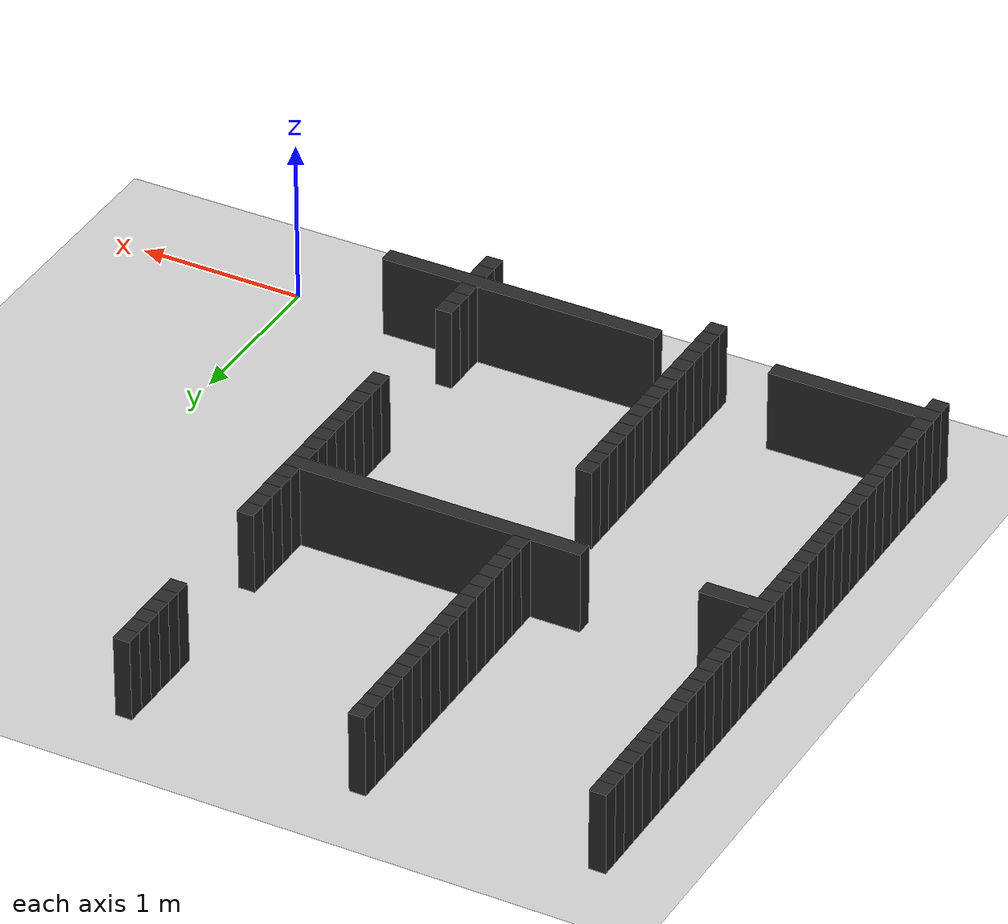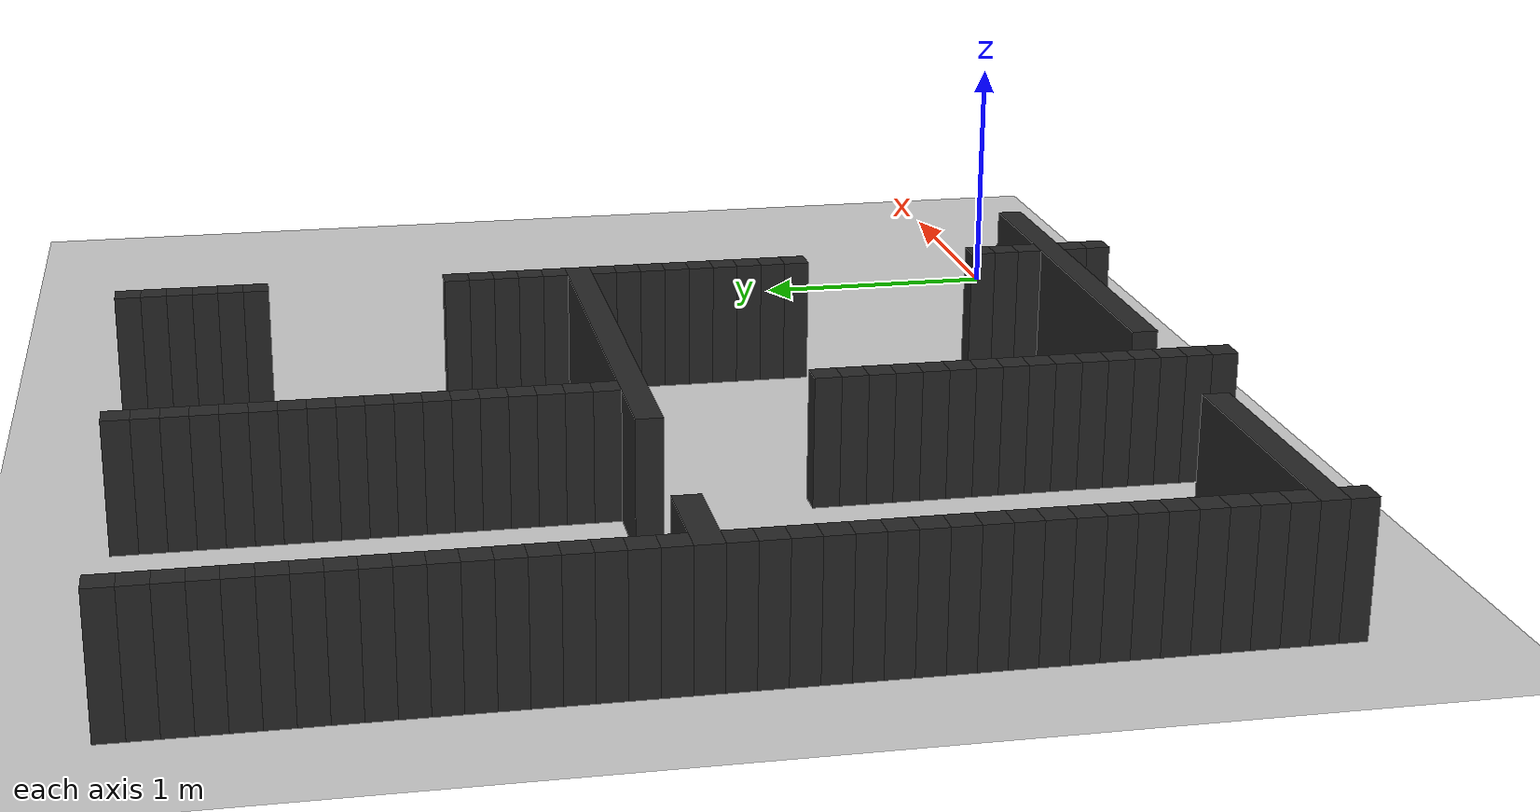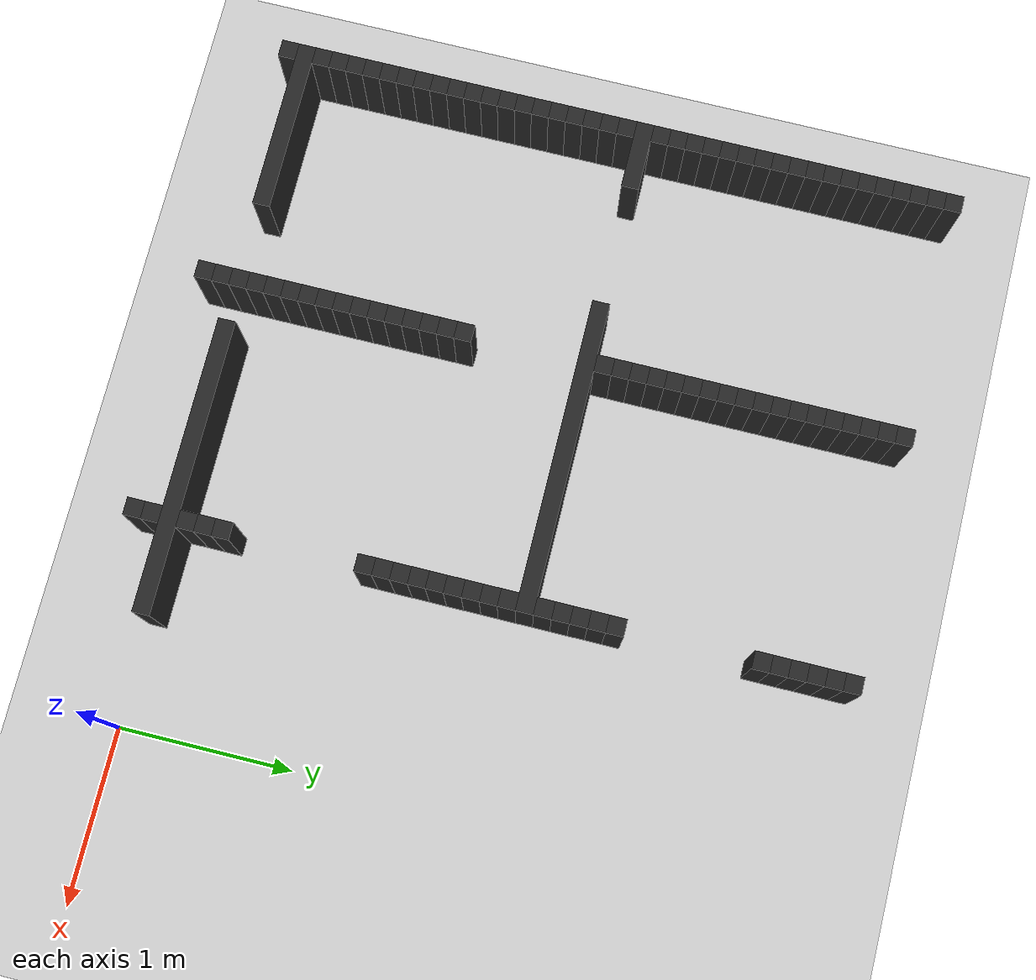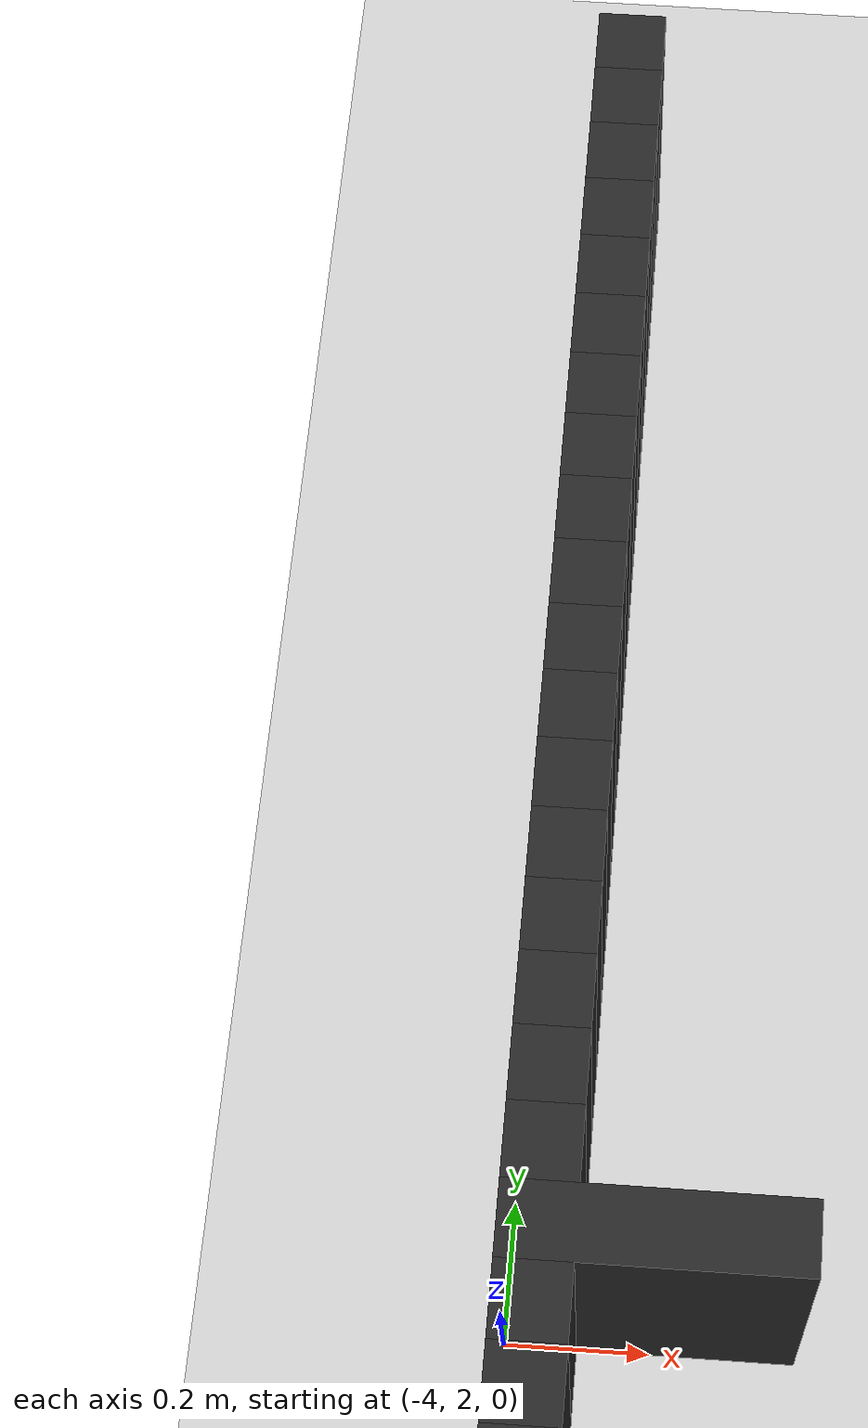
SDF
<sdf version="1.6">
 <world name="stress_maze_world">
  <include><uri>model://sun</uri></include>
  <include><uri>model://ground_plane</uri></include>
  <model name="wall_038_014">
   <static>true</static>
   <pose>-2.55000 -0.15000 0.25 0 0 0</pose>
   <link name="link">
    <collision name="collision"><geometry><box><size>0.10000 0.10000 0.5</size></box></geometry></collision>
    <visual name="visual">
     <geometry><box><size>0.10000 0.10000 0.5</size></box></geometry>
     <material><ambient>0.12 0.12 0.12 1</ambient><diffuse>0.15 0.15 0.15 1</diffuse></material>
    </visual>
   </link>
  </model>
  <model name="wall_038_028">
   <static>true</static>
   <pose>-1.15000 -0.15000 0.25 0 0 0</pose>
   <link name="link">
    <collision name="collision"><geometry><box><size>0.10000 0.10000 0.5</size></box></geometry></collision>
    <visual name="visual">
     <geometry><box><size>0.10000 0.10000 0.5</size></box></geometry>
     <material><ambient>0.12 0.12 0.12 1</ambient><diffuse>0.15 0.15 0.15 1</diffuse></material>
    </visual>
   </link>
  </model>
  <model name="wall_039_000">
   <static>true</static>
   <pose>-3.95000 -0.05000 0.25 0 0 0</pose>
   <link name="link">
    <collision name="collision"><geometry><box><size>0.10000 0.10000 0.5</size></box></geometry></collision>
    <visual name="visual">
     <geometry><box><size>0.10000 0.10000 0.5</size></box></geometry>
     <material><ambient>0.12 0.12 0.12 1</ambient><diffuse>0.15 0.15 0.15 1</diffuse></material>
    </visual>
   </link>
  </model>
  <model name="wall_039_014">
   <static>true</static>
   <pose>-2.55000 -0.05000 0.25 0 0 0</pose>
   <link name="link">
    <collision name="collision"><geometry><box><size>0.10000 0.10000 0.5</size></box></geometry></collision>
    <visual name="visual">
     <geometry><box><size>0.10000 0.10000 0.5</size></box></geometry>
     <material><ambient>0.12 0.12 0.12 1</ambient><diffuse>0.15 0.15 0.15 1</diffuse></material>
    </visual>
   </link>
  </model>
  <model name="wall_039_028">
   <static>true</static>
   <pose>-1.15000 -0.05000 0.25 0 0 0</pose>
   <link name="link">
    <collision name="collision"><geometry><box><size>0.10000 0.10000 0.5</size></box></geometry></collision>
    <visual name="visual">
     <geometry><box><size>0.10000 0.10000 0.5</size></box></geometry>
     <material><ambient>0.12 0.12 0.12 1</ambient><diffuse>0.15 0.15 0.15 1</diffuse></material>
    </visual>
   </link>
  </model>
  <model name="wall_040_000">
   <static>true</static>
   <pose>-3.50000 0.05000 0.25 0 0 0</pose>
   <link name="link">
    <collision name="collision"><geometry><box><size>1.00000 0.10000 0.5</size></box></geometry></collision>
    <visual name="visual">
     <geometry><box><size>1.00000 0.10000 0.5</size></box></geometry>
     <material><ambient>0.12 0.12 0.12 1</ambient><diffuse>0.15 0.15 0.15 1</diffuse></material>
    </visual>
   </link>
  </model>
  <model name="wall_040_014">
   <static>true</static>
   <pose>-2.55000 0.05000 0.25 0 0 0</pose>
   <link name="link">
    <collision name="collision"><geometry><box><size>0.10000 0.10000 0.5</size></box></geometry></collision>
    <visual name="visual">
     <geometry><box><size>0.10000 0.10000 0.5</size></box></geometry>
     <material><ambient>0.12 0.12 0.12 1</ambient><diffuse>0.15 0.15 0.15 1</diffuse></material>
    </visual>
   </link>
  </model>
  <model name="wall_040_017">
   <static>true</static>
   <pose>-1.45000 0.05000 0.25 0 0 0</pose>
   <link name="link">
    <collision name="collision"><geometry><box><size>1.70000 0.10000 0.5</size></box></geometry></collision>
    <visual name="visual">
     <geometry><box><size>1.70000 0.10000 0.5</size></box></geometry>
     <material><ambient>0.12 0.12 0.12 1</ambient><diffuse>0.15 0.15 0.15 1</diffuse></material>
    </visual>
   </link>
  </model>
  <model name="wall_041_000">
   <static>true</static>
   <pose>-3.95000 0.15000 0.25 0 0 0</pose>
   <link name="link">
    <collision name="collision"><geometry><box><size>0.10000 0.10000 0.5</size></box></geometry></collision>
    <visual name="visual">
     <geometry><box><size>0.10000 0.10000 0.5</size></box></geometry>
     <material><ambient>0.12 0.12 0.12 1</ambient><diffuse>0.15 0.15 0.15 1</diffuse></material>
    </visual>
   </link>
  </model>
  <model name="wall_041_014">
   <static>true</static>
   <pose>-2.55000 0.15000 0.25 0 0 0</pose>
   <link name="link">
    <collision name="collision"><geometry><box><size>0.10000 0.10000 0.5</size></box></geometry></collision>
    <visual name="visual">
     <geometry><box><size>0.10000 0.10000 0.5</size></box></geometry>
     <material><ambient>0.12 0.12 0.12 1</ambient><diffuse>0.15 0.15 0.15 1</diffuse></material>
    </visual>
   </link>
  </model>
  <model name="wall_041_028">
   <static>true</static>
   <pose>-1.15000 0.15000 0.25 0 0 0</pose>
   <link name="link">
    <collision name="collision"><geometry><box><size>0.10000 0.10000 0.5</size></box></geometry></collision>
    <visual name="visual">
     <geometry><box><size>0.10000 0.10000 0.5</size></box></geometry>
     <material><ambient>0.12 0.12 0.12 1</ambient><diffuse>0.15 0.15 0.15 1</diffuse></material>
    </visual>
   </link>
  </model>
  <model name="wall_042_000">
   <static>true</static>
   <pose>-3.95000 0.25000 0.25 0 0 0</pose>
   <link name="link">
    <collision name="collision"><geometry><box><size>0.10000 0.10000 0.5</size></box></geometry></collision>
    <visual name="visual">
     <geometry><box><size>0.10000 0.10000 0.5</size></box></geometry>
     <material><ambient>0.12 0.12 0.12 1</ambient><diffuse>0.15 0.15 0.15 1</diffuse></material>
    </visual>
   </link>
  </model>
  <model name="wall_042_014">
   <static>true</static>
   <pose>-2.55000 0.25000 0.25 0 0 0</pose>
   <link name="link">
    <collision name="collision"><geometry><box><size>0.10000 0.10000 0.5</size></box></geometry></collision>
    <visual name="visual">
     <geometry><box><size>0.10000 0.10000 0.5</size></box></geometry>
     <material><ambient>0.12 0.12 0.12 1</ambient><diffuse>0.15 0.15 0.15 1</diffuse></material>
    </visual>
   </link>
  </model>
  <model name="wall_042_028">
   <static>true</static>
   <pose>-1.15000 0.25000 0.25 0 0 0</pose>
   <link name="link">
    <collision name="collision"><geometry><box><size>0.10000 0.10000 0.5</size></box></geometry></collision>
    <visual name="visual">
     <geometry><box><size>0.10000 0.10000 0.5</size></box></geometry>
     <material><ambient>0.12 0.12 0.12 1</ambient><diffuse>0.15 0.15 0.15 1</diffuse></material>
    </visual>
   </link>
  </model>
  <model name="wall_043_000">
   <static>true</static>
   <pose>-3.95000 0.35000 0.25 0 0 0</pose>
   <link name="link">
    <collision name="collision"><geometry><box><size>0.10000 0.10000 0.5</size></box></geometry></collision>
    <visual name="visual">
     <geometry><box><size>0.10000 0.10000 0.5</size></box></geometry>
     <material><ambient>0.12 0.12 0.12 1</ambient><diffuse>0.15 0.15 0.15 1</diffuse></material>
    </visual>
   </link>
  </model>
  <model name="wall_043_014">
   <static>true</static>
   <pose>-2.55000 0.35000 0.25 0 0 0</pose>
   <link name="link">
    <collision name="collision"><geometry><box><size>0.10000 0.10000 0.5</size></box></geometry></collision>
    <visual name="visual">
     <geometry><box><size>0.10000 0.10000 0.5</size></box></geometry>
     <material><ambient>0.12 0.12 0.12 1</ambient><diffuse>0.15 0.15 0.15 1</diffuse></material>
    </visual>
   </link>
  </model>
  <model name="wall_043_028">
   <static>true</static>
   <pose>-1.15000 0.35000 0.25 0 0 0</pose>
   <link name="link">
    <collision name="collision"><geometry><box><size>0.10000 0.10000 0.5</size></box></geometry></collision>
    <visual name="visual">
     <geometry><box><size>0.10000 0.10000 0.5</size></box></geometry>
     <material><ambient>0.12 0.12 0.12 1</ambient><diffuse>0.15 0.15 0.15 1</diffuse></material>
    </visual>
   </link>
  </model>
  <model name="wall_044_000">
   <static>true</static>
   <pose>-3.95000 0.45000 0.25 0 0 0</pose>
   <link name="link">
    <collision name="collision"><geometry><box><size>0.10000 0.10000 0.5</size></box></geometry></collision>
    <visual name="visual">
     <geometry><box><size>0.10000 0.10000 0.5</size></box></geometry>
     <material><ambient>0.12 0.12 0.12 1</ambient><diffuse>0.15 0.15 0.15 1</diffuse></material>
    </visual>
   </link>
  </model>
  <model name="wall_044_014">
   <static>true</static>
   <pose>-2.55000 0.45000 0.25 0 0 0</pose>
   <link name="link">
    <collision name="collision"><geometry><box><size>0.10000 0.10000 0.5</size></box></geometry></collision>
    <visual name="visual">
     <geometry><box><size>0.10000 0.10000 0.5</size></box></geometry>
     <material><ambient>0.12 0.12 0.12 1</ambient><diffuse>0.15 0.15 0.15 1</diffuse></material>
    </visual>
   </link>
  </model>
  <model name="wall_045_000">
   <static>true</static>
   <pose>-3.95000 0.55000 0.25 0 0 0</pose>
   <link name="link">
    <collision name="collision"><geometry><box><size>0.10000 0.10000 0.5</size></box></geometry></collision>
    <visual name="visual">
     <geometry><box><size>0.10000 0.10000 0.5</size></box></geometry>
     <material><ambient>0.12 0.12 0.12 1</ambient><diffuse>0.15 0.15 0.15 1</diffuse></material>
    </visual>
   </link>
  </model>
  <model name="wall_045_014">
   <static>true</static>
   <pose>-2.55000 0.55000 0.25 0 0 0</pose>
   <link name="link">
    <collision name="collision"><geometry><box><size>0.10000 0.10000 0.5</size></box></geometry></collision>
    <visual name="visual">
     <geometry><box><size>0.10000 0.10000 0.5</size></box></geometry>
     <material><ambient>0.12 0.12 0.12 1</ambient><diffuse>0.15 0.15 0.15 1</diffuse></material>
    </visual>
   </link>
  </model>
  <model name="wall_046_000">
   <static>true</static>
   <pose>-3.95000 0.65000 0.25 0 0 0</pose>
   <link name="link">
    <collision name="collision"><geometry><box><size>0.10000 0.10000 0.5</size></box></geometry></collision>
    <visual name="visual">
     <geometry><box><size>0.10000 0.10000 0.5</size></box></geometry>
     <material><ambient>0.12 0.12 0.12 1</ambient><diffuse>0.15 0.15 0.15 1</diffuse></material>
    </visual>
   </link>
  </model>
  <model name="wall_046_014">
   <static>true</static>
   <pose>-2.55000 0.65000 0.25 0 0 0</pose>
   <link name="link">
    <collision name="collision"><geometry><box><size>0.10000 0.10000 0.5</size></box></geometry></collision>
    <visual name="visual">
     <geometry><box><size>0.10000 0.10000 0.5</size></box></geometry>
     <material><ambient>0.12 0.12 0.12 1</ambient><diffuse>0.15 0.15 0.15 1</diffuse></material>
    </visual>
   </link>
  </model>
  <model name="wall_047_000">
   <static>true</static>
   <pose>-3.95000 0.75000 0.25 0 0 0</pose>
   <link name="link">
    <collision name="collision"><geometry><box><size>0.10000 0.10000 0.5</size></box></geometry></collision>
    <visual name="visual">
     <geometry><box><size>0.10000 0.10000 0.5</size></box></geometry>
     <material><ambient>0.12 0.12 0.12 1</ambient><diffuse>0.15 0.15 0.15 1</diffuse></material>
    </visual>
   </link>
  </model>
  <model name="wall_047_014">
   <static>true</static>
   <pose>-2.55000 0.75000 0.25 0 0 0</pose>
   <link name="link">
    <collision name="collision"><geometry><box><size>0.10000 0.10000 0.5</size></box></geometry></collision>
    <visual name="visual">
     <geometry><box><size>0.10000 0.10000 0.5</size></box></geometry>
     <material><ambient>0.12 0.12 0.12 1</ambient><diffuse>0.15 0.15 0.15 1</diffuse></material>
    </visual>
   </link>
  </model>
  <model name="wall_048_000">
   <static>true</static>
   <pose>-3.95000 0.85000 0.25 0 0 0</pose>
   <link name="link">
    <collision name="collision"><geometry><box><size>0.10000 0.10000 0.5</size></box></geometry></collision>
    <visual name="visual">
     <geometry><box><size>0.10000 0.10000 0.5</size></box></geometry>
     <material><ambient>0.12 0.12 0.12 1</ambient><diffuse>0.15 0.15 0.15 1</diffuse></material>
    </visual>
   </link>
  </model>
  <model name="wall_048_014">
   <static>true</static>
   <pose>-2.55000 0.85000 0.25 0 0 0</pose>
   <link name="link">
    <collision name="collision"><geometry><box><size>0.10000 0.10000 0.5</size></box></geometry></collision>
    <visual name="visual">
     <geometry><box><size>0.10000 0.10000 0.5</size></box></geometry>
     <material><ambient>0.12 0.12 0.12 1</ambient><diffuse>0.15 0.15 0.15 1</diffuse></material>
    </visual>
   </link>
  </model>
  <model name="wall_049_000">
   <static>true</static>
   <pose>-3.95000 0.95000 0.25 0 0 0</pose>
   <link name="link">
    <collision name="collision"><geometry><box><size>0.10000 0.10000 0.5</size></box></geometry></collision>
    <visual name="visual">
     <geometry><box><size>0.10000 0.10000 0.5</size></box></geometry>
     <material><ambient>0.12 0.12 0.12 1</ambient><diffuse>0.15 0.15 0.15 1</diffuse></material>
    </visual>
   </link>
  </model>
  <model name="wall_049_014">
   <static>true</static>
   <pose>-2.55000 0.95000 0.25 0 0 0</pose>
   <link name="link">
    <collision name="collision"><geometry><box><size>0.10000 0.10000 0.5</size></box></geometry></collision>
    <visual name="visual">
     <geometry><box><size>0.10000 0.10000 0.5</size></box></geometry>
     <material><ambient>0.12 0.12 0.12 1</ambient><diffuse>0.15 0.15 0.15 1</diffuse></material>
    </visual>
   </link>
  </model>
  <model name="wall_050_000">
   <static>true</static>
   <pose>-3.95000 1.05000 0.25 0 0 0</pose>
   <link name="link">
    <collision name="collision"><geometry><box><size>0.10000 0.10000 0.5</size></box></geometry></collision>
    <visual name="visual">
     <geometry><box><size>0.10000 0.10000 0.5</size></box></geometry>
     <material><ambient>0.12 0.12 0.12 1</ambient><diffuse>0.15 0.15 0.15 1</diffuse></material>
    </visual>
   </link>
  </model>
  <model name="wall_050_014">
   <static>true</static>
   <pose>-2.55000 1.05000 0.25 0 0 0</pose>
   <link name="link">
    <collision name="collision"><geometry><box><size>0.10000 0.10000 0.5</size></box></geometry></collision>
    <visual name="visual">
     <geometry><box><size>0.10000 0.10000 0.5</size></box></geometry>
     <material><ambient>0.12 0.12 0.12 1</ambient><diffuse>0.15 0.15 0.15 1</diffuse></material>
    </visual>
   </link>
  </model>
  <model name="wall_051_000">
   <static>true</static>
   <pose>-3.95000 1.15000 0.25 0 0 0</pose>
   <link name="link">
    <collision name="collision"><geometry><box><size>0.10000 0.10000 0.5</size></box></geometry></collision>
    <visual name="visual">
     <geometry><box><size>0.10000 0.10000 0.5</size></box></geometry>
     <material><ambient>0.12 0.12 0.12 1</ambient><diffuse>0.15 0.15 0.15 1</diffuse></material>
    </visual>
   </link>
  </model>
  <model name="wall_051_014">
   <static>true</static>
   <pose>-2.55000 1.15000 0.25 0 0 0</pose>
   <link name="link">
    <collision name="collision"><geometry><box><size>0.10000 0.10000 0.5</size></box></geometry></collision>
    <visual name="visual">
     <geometry><box><size>0.10000 0.10000 0.5</size></box></geometry>
     <material><ambient>0.12 0.12 0.12 1</ambient><diffuse>0.15 0.15 0.15 1</diffuse></material>
    </visual>
   </link>
  </model>
  <model name="wall_051_028">
   <static>true</static>
   <pose>-1.15000 1.15000 0.25 0 0 0</pose>
   <link name="link">
    <collision name="collision"><geometry><box><size>0.10000 0.10000 0.5</size></box></geometry></collision>
    <visual name="visual">
     <geometry><box><size>0.10000 0.10000 0.5</size></box></geometry>
     <material><ambient>0.12 0.12 0.12 1</ambient><diffuse>0.15 0.15 0.15 1</diffuse></material>
    </visual>
   </link>
  </model>
  <model name="wall_052_000">
   <static>true</static>
   <pose>-3.95000 1.25000 0.25 0 0 0</pose>
   <link name="link">
    <collision name="collision"><geometry><box><size>0.10000 0.10000 0.5</size></box></geometry></collision>
    <visual name="visual">
     <geometry><box><size>0.10000 0.10000 0.5</size></box></geometry>
     <material><ambient>0.12 0.12 0.12 1</ambient><diffuse>0.15 0.15 0.15 1</diffuse></material>
    </visual>
   </link>
  </model>
  <model name="wall_052_014">
   <static>true</static>
   <pose>-2.55000 1.25000 0.25 0 0 0</pose>
   <link name="link">
    <collision name="collision"><geometry><box><size>0.10000 0.10000 0.5</size></box></geometry></collision>
    <visual name="visual">
     <geometry><box><size>0.10000 0.10000 0.5</size></box></geometry>
     <material><ambient>0.12 0.12 0.12 1</ambient><diffuse>0.15 0.15 0.15 1</diffuse></material>
    </visual>
   </link>
  </model>
  <model name="wall_052_028">
   <static>true</static>
   <pose>-1.15000 1.25000 0.25 0 0 0</pose>
   <link name="link">
    <collision name="collision"><geometry><box><size>0.10000 0.10000 0.5</size></box></geometry></collision>
    <visual name="visual">
     <geometry><box><size>0.10000 0.10000 0.5</size></box></geometry>
     <material><ambient>0.12 0.12 0.12 1</ambient><diffuse>0.15 0.15 0.15 1</diffuse></material>
    </visual>
   </link>
  </model>
  <model name="wall_053_000">
   <static>true</static>
   <pose>-3.95000 1.35000 0.25 0 0 0</pose>
   <link name="link">
    <collision name="collision"><geometry><box><size>0.10000 0.10000 0.5</size></box></geometry></collision>
    <visual name="visual">
     <geometry><box><size>0.10000 0.10000 0.5</size></box></geometry>
     <material><ambient>0.12 0.12 0.12 1</ambient><diffuse>0.15 0.15 0.15 1</diffuse></material>
    </visual>
   </link>
  </model>
  <model name="wall_053_014">
   <static>true</static>
   <pose>-2.55000 1.35000 0.25 0 0 0</pose>
   <link name="link">
    <collision name="collision"><geometry><box><size>0.10000 0.10000 0.5</size></box></geometry></collision>
    <visual name="visual">
     <geometry><box><size>0.10000 0.10000 0.5</size></box></geometry>
     <material><ambient>0.12 0.12 0.12 1</ambient><diffuse>0.15 0.15 0.15 1</diffuse></material>
    </visual>
   </link>
  </model>
  <model name="wall_053_028">
   <static>true</static>
   <pose>-1.15000 1.35000 0.25 0 0 0</pose>
   <link name="link">
    <collision name="collision"><geometry><box><size>0.10000 0.10000 0.5</size></box></geometry></collision>
    <visual name="visual">
     <geometry><box><size>0.10000 0.10000 0.5</size></box></geometry>
     <material><ambient>0.12 0.12 0.12 1</ambient><diffuse>0.15 0.15 0.15 1</diffuse></material>
    </visual>
   </link>
  </model>
  <model name="wall_054_000">
   <static>true</static>
   <pose>-3.95000 1.45000 0.25 0 0 0</pose>
   <link name="link">
    <collision name="collision"><geometry><box><size>0.10000 0.10000 0.5</size></box></geometry></collision>
    <visual name="visual">
     <geometry><box><size>0.10000 0.10000 0.5</size></box></geometry>
     <material><ambient>0.12 0.12 0.12 1</ambient><diffuse>0.15 0.15 0.15 1</diffuse></material>
    </visual>
   </link>
  </model>
  <model name="wall_054_028">
   <static>true</static>
   <pose>-1.15000 1.45000 0.25 0 0 0</pose>
   <link name="link">
    <collision name="collision"><geometry><box><size>0.10000 0.10000 0.5</size></box></geometry></collision>
    <visual name="visual">
     <geometry><box><size>0.10000 0.10000 0.5</size></box></geometry>
     <material><ambient>0.12 0.12 0.12 1</ambient><diffuse>0.15 0.15 0.15 1</diffuse></material>
    </visual>
   </link>
  </model>
  <model name="wall_055_000">
   <static>true</static>
   <pose>-3.95000 1.55000 0.25 0 0 0</pose>
   <link name="link">
    <collision name="collision"><geometry><box><size>0.10000 0.10000 0.5</size></box></geometry></collision>
    <visual name="visual">
     <geometry><box><size>0.10000 0.10000 0.5</size></box></geometry>
     <material><ambient>0.12 0.12 0.12 1</ambient><diffuse>0.15 0.15 0.15 1</diffuse></material>
    </visual>
   </link>
  </model>
  <model name="wall_055_028">
   <static>true</static>
   <pose>-1.15000 1.55000 0.25 0 0 0</pose>
   <link name="link">
    <collision name="collision"><geometry><box><size>0.10000 0.10000 0.5</size></box></geometry></collision>
    <visual name="visual">
     <geometry><box><size>0.10000 0.10000 0.5</size></box></geometry>
     <material><ambient>0.12 0.12 0.12 1</ambient><diffuse>0.15 0.15 0.15 1</diffuse></material>
    </visual>
   </link>
  </model>
  <model name="wall_056_000">
   <static>true</static>
   <pose>-3.95000 1.65000 0.25 0 0 0</pose>
   <link name="link">
    <collision name="collision"><geometry><box><size>0.10000 0.10000 0.5</size></box></geometry></collision>
    <visual name="visual">
     <geometry><box><size>0.10000 0.10000 0.5</size></box></geometry>
     <material><ambient>0.12 0.12 0.12 1</ambient><diffuse>0.15 0.15 0.15 1</diffuse></material>
    </visual>
   </link>
  </model>
  <model name="wall_056_028">
   <static>true</static>
   <pose>-1.15000 1.65000 0.25 0 0 0</pose>
   <link name="link">
    <collision name="collision"><geometry><box><size>0.10000 0.10000 0.5</size></box></geometry></collision>
    <visual name="visual">
     <geometry><box><size>0.10000 0.10000 0.5</size></box></geometry>
     <material><ambient>0.12 0.12 0.12 1</ambient><diffuse>0.15 0.15 0.15 1</diffuse></material>
    </visual>
   </link>
  </model>
  <model name="wall_057_000">
   <static>true</static>
   <pose>-3.95000 1.75000 0.25 0 0 0</pose>
   <link name="link">
    <collision name="collision"><geometry><box><size>0.10000 0.10000 0.5</size></box></geometry></collision>
    <visual name="visual">
     <geometry><box><size>0.10000 0.10000 0.5</size></box></geometry>
     <material><ambient>0.12 0.12 0.12 1</ambient><diffuse>0.15 0.15 0.15 1</diffuse></material>
    </visual>
   </link>
  </model>
  <model name="wall_057_028">
   <static>true</static>
   <pose>-1.15000 1.75000 0.25 0 0 0</pose>
   <link name="link">
    <collision name="collision"><geometry><box><size>0.10000 0.10000 0.5</size></box></geometry></collision>
    <visual name="visual">
     <geometry><box><size>0.10000 0.10000 0.5</size></box></geometry>
     <material><ambient>0.12 0.12 0.12 1</ambient><diffuse>0.15 0.15 0.15 1</diffuse></material>
    </visual>
   </link>
  </model>
  <model name="wall_058_000">
   <static>true</static>
   <pose>-3.95000 1.85000 0.25 0 0 0</pose>
   <link name="link">
    <collision name="collision"><geometry><box><size>0.10000 0.10000 0.5</size></box></geometry></collision>
    <visual name="visual">
     <geometry><box><size>0.10000 0.10000 0.5</size></box></geometry>
     <material><ambient>0.12 0.12 0.12 1</ambient><diffuse>0.15 0.15 0.15 1</diffuse></material>
    </visual>
   </link>
  </model>
  <model name="wall_058_028">
   <static>true</static>
   <pose>-1.15000 1.85000 0.25 0 0 0</pose>
   <link name="link">
    <collision name="collision"><geometry><box><size>0.10000 0.10000 0.5</size></box></geometry></collision>
    <visual name="visual">
     <geometry><box><size>0.10000 0.10000 0.5</size></box></geometry>
     <material><ambient>0.12 0.12 0.12 1</ambient><diffuse>0.15 0.15 0.15 1</diffuse></material>
    </visual>
   </link>
  </model>
  <model name="wall_059_000">
   <static>true</static>
   <pose>-3.95000 1.95000 0.25 0 0 0</pose>
   <link name="link">
    <collision name="collision"><geometry><box><size>0.10000 0.10000 0.5</size></box></geometry></collision>
    <visual name="visual">
     <geometry><box><size>0.10000 0.10000 0.5</size></box></geometry>
     <material><ambient>0.12 0.12 0.12 1</ambient><diffuse>0.15 0.15 0.15 1</diffuse></material>
    </visual>
   </link>
  </model>
  <model name="wall_059_028">
   <static>true</static>
   <pose>-1.15000 1.95000 0.25 0 0 0</pose>
   <link name="link">
    <collision name="collision"><geometry><box><size>0.10000 0.10000 0.5</size></box></geometry></collision>
    <visual name="visual">
     <geometry><box><size>0.10000 0.10000 0.5</size></box></geometry>
     <material><ambient>0.12 0.12 0.12 1</ambient><diffuse>0.15 0.15 0.15 1</diffuse></material>
    </visual>
   </link>
  </model>
  <model name="wall_060_000">
   <static>true</static>
   <pose>-3.80000 2.05000 0.25 0 0 0</pose>
   <link name="link">
    <collision name="collision"><geometry><box><size>0.40000 0.10000 0.5</size></box></geometry></collision>
    <visual name="visual">
     <geometry><box><size>0.40000 0.10000 0.5</size></box></geometry>
     <material><ambient>0.12 0.12 0.12 1</ambient><diffuse>0.15 0.15 0.15 1</diffuse></material>
    </visual>
   </link>
  </model>
  <model name="wall_060_011">
   <static>true</static>
   <pose>-2.00000 2.05000 0.25 0 0 0</pose>
   <link name="link">
    <collision name="collision"><geometry><box><size>1.80000 0.10000 0.5</size></box></geometry></collision>
    <visual name="visual">
     <geometry><box><size>1.80000 0.10000 0.5</size></box></geometry>
     <material><ambient>0.12 0.12 0.12 1</ambient><diffuse>0.15 0.15 0.15 1</diffuse></material>
    </visual>
   </link>
  </model>
  <model name="wall_061_000">
   <static>true</static>
   <pose>-3.95000 2.15000 0.25 0 0 0</pose>
   <link name="link">
    <collision name="collision"><geometry><box><size>0.10000 0.10000 0.5</size></box></geometry></collision>
    <visual name="visual">
     <geometry><box><size>0.10000 0.10000 0.5</size></box></geometry>
     <material><ambient>0.12 0.12 0.12 1</ambient><diffuse>0.15 0.15 0.15 1</diffuse></material>
    </visual>
   </link>
  </model>
  <model name="wall_061_014">
   <static>true</static>
   <pose>-2.55000 2.15000 0.25 0 0 0</pose>
   <link name="link">
    <collision name="collision"><geometry><box><size>0.10000 0.10000 0.5</size></box></geometry></collision>
    <visual name="visual">
     <geometry><box><size>0.10000 0.10000 0.5</size></box></geometry>
     <material><ambient>0.12 0.12 0.12 1</ambient><diffuse>0.15 0.15 0.15 1</diffuse></material>
    </visual>
   </link>
  </model>
  <model name="wall_061_028">
   <static>true</static>
   <pose>-1.15000 2.15000 0.25 0 0 0</pose>
   <link name="link">
    <collision name="collision"><geometry><box><size>0.10000 0.10000 0.5</size></box></geometry></collision>
    <visual name="visual">
     <geometry><box><size>0.10000 0.10000 0.5</size></box></geometry>
     <material><ambient>0.12 0.12 0.12 1</ambient><diffuse>0.15 0.15 0.15 1</diffuse></material>
    </visual>
   </link>
  </model>
  <model name="wall_062_000">
   <static>true</static>
   <pose>-3.95000 2.25000 0.25 0 0 0</pose>
   <link name="link">
    <collision name="collision"><geometry><box><size>0.10000 0.10000 0.5</size></box></geometry></collision>
    <visual name="visual">
     <geometry><box><size>0.10000 0.10000 0.5</size></box></geometry>
     <material><ambient>0.12 0.12 0.12 1</ambient><diffuse>0.15 0.15 0.15 1</diffuse></material>
    </visual>
   </link>
  </model>
  <model name="wall_062_014">
   <static>true</static>
   <pose>-2.55000 2.25000 0.25 0 0 0</pose>
   <link name="link">
    <collision name="collision"><geometry><box><size>0.10000 0.10000 0.5</size></box></geometry></collision>
    <visual name="visual">
     <geometry><box><size>0.10000 0.10000 0.5</size></box></geometry>
     <material><ambient>0.12 0.12 0.12 1</ambient><diffuse>0.15 0.15 0.15 1</diffuse></material>
    </visual>
   </link>
  </model>
  <model name="wall_062_028">
   <static>true</static>
   <pose>-1.15000 2.25000 0.25 0 0 0</pose>
   <link name="link">
    <collision name="collision"><geometry><box><size>0.10000 0.10000 0.5</size></box></geometry></collision>
    <visual name="visual">
     <geometry><box><size>0.10000 0.10000 0.5</size></box></geometry>
     <material><ambient>0.12 0.12 0.12 1</ambient><diffuse>0.15 0.15 0.15 1</diffuse></material>
    </visual>
   </link>
  </model>
  <model name="wall_063_000">
   <static>true</static>
   <pose>-3.95000 2.35000 0.25 0 0 0</pose>
   <link name="link">
    <collision name="collision"><geometry><box><size>0.10000 0.10000 0.5</size></box></geometry></collision>
    <visual name="visual">
     <geometry><box><size>0.10000 0.10000 0.5</size></box></geometry>
     <material><ambient>0.12 0.12 0.12 1</ambient><diffuse>0.15 0.15 0.15 1</diffuse></material>
    </visual>
   </link>
  </model>
  <model name="wall_063_014">
   <static>true</static>
   <pose>-2.55000 2.35000 0.25 0 0 0</pose>
   <link name="link">
    <collision name="collision"><geometry><box><size>0.10000 0.10000 0.5</size></box></geometry></collision>
    <visual name="visual">
     <geometry><box><size>0.10000 0.10000 0.5</size></box></geometry>
     <material><ambient>0.12 0.12 0.12 1</ambient><diffuse>0.15 0.15 0.15 1</diffuse></material>
    </visual>
   </link>
  </model>
  <model name="wall_063_028">
   <static>true</static>
   <pose>-1.15000 2.35000 0.25 0 0 0</pose>
   <link name="link">
    <collision name="collision"><geometry><box><size>0.10000 0.10000 0.5</size></box></geometry></collision>
    <visual name="visual">
     <geometry><box><size>0.10000 0.10000 0.5</size></box></geometry>
     <material><ambient>0.12 0.12 0.12 1</ambient><diffuse>0.15 0.15 0.15 1</diffuse></material>
    </visual>
   </link>
  </model>
  <model name="wall_064_000">
   <static>true</static>
   <pose>-3.95000 2.45000 0.25 0 0 0</pose>
   <link name="link">
    <collision name="collision"><geometry><box><size>0.10000 0.10000 0.5</size></box></geometry></collision>
    <visual name="visual">
     <geometry><box><size>0.10000 0.10000 0.5</size></box></geometry>
     <material><ambient>0.12 0.12 0.12 1</ambient><diffuse>0.15 0.15 0.15 1</diffuse></material>
    </visual>
   </link>
  </model>
  <model name="wall_064_014">
   <static>true</static>
   <pose>-2.55000 2.45000 0.25 0 0 0</pose>
   <link name="link">
    <collision name="collision"><geometry><box><size>0.10000 0.10000 0.5</size></box></geometry></collision>
    <visual name="visual">
     <geometry><box><size>0.10000 0.10000 0.5</size></box></geometry>
     <material><ambient>0.12 0.12 0.12 1</ambient><diffuse>0.15 0.15 0.15 1</diffuse></material>
    </visual>
   </link>
  </model>
  <model name="wall_064_028">
   <static>true</static>
   <pose>-1.15000 2.45000 0.25 0 0 0</pose>
   <link name="link">
    <collision name="collision"><geometry><box><size>0.10000 0.10000 0.5</size></box></geometry></collision>
    <visual name="visual">
     <geometry><box><size>0.10000 0.10000 0.5</size></box></geometry>
     <material><ambient>0.12 0.12 0.12 1</ambient><diffuse>0.15 0.15 0.15 1</diffuse></material>
    </visual>
   </link>
  </model>
  <model name="wall_065_000">
   <static>true</static>
   <pose>-3.95000 2.55000 0.25 0 0 0</pose>
   <link name="link">
    <collision name="collision"><geometry><box><size>0.10000 0.10000 0.5</size></box></geometry></collision>
    <visual name="visual">
     <geometry><box><size>0.10000 0.10000 0.5</size></box></geometry>
     <material><ambient>0.12 0.12 0.12 1</ambient><diffuse>0.15 0.15 0.15 1</diffuse></material>
    </visual>
   </link>
  </model>
  <model name="wall_065_014">
   <static>true</static>
   <pose>-2.55000 2.55000 0.25 0 0 0</pose>
   <link name="link">
    <collision name="collision"><geometry><box><size>0.10000 0.10000 0.5</size></box></geometry></collision>
    <visual name="visual">
     <geometry><box><size>0.10000 0.10000 0.5</size></box></geometry>
     <material><ambient>0.12 0.12 0.12 1</ambient><diffuse>0.15 0.15 0.15 1</diffuse></material>
    </visual>
   </link>
  </model>
  <model name="wall_065_028">
   <static>true</static>
   <pose>-1.15000 2.55000 0.25 0 0 0</pose>
   <link name="link">
    <collision name="collision"><geometry><box><size>0.10000 0.10000 0.5</size></box></geometry></collision>
    <visual name="visual">
     <geometry><box><size>0.10000 0.10000 0.5</size></box></geometry>
     <material><ambient>0.12 0.12 0.12 1</ambient><diffuse>0.15 0.15 0.15 1</diffuse></material>
    </visual>
   </link>
  </model>
  <model name="wall_066_000">
   <static>true</static>
   <pose>-3.95000 2.65000 0.25 0 0 0</pose>
   <link name="link">
    <collision name="collision"><geometry><box><size>0.10000 0.10000 0.5</size></box></geometry></collision>
    <visual name="visual">
     <geometry><box><size>0.10000 0.10000 0.5</size></box></geometry>
     <material><ambient>0.12 0.12 0.12 1</ambient><diffuse>0.15 0.15 0.15 1</diffuse></material>
    </visual>
   </link>
  </model>
  <model name="wall_066_014">
   <static>true</static>
   <pose>-2.55000 2.65000 0.25 0 0 0</pose>
   <link name="link">
    <collision name="collision"><geometry><box><size>0.10000 0.10000 0.5</size></box></geometry></collision>
    <visual name="visual">
     <geometry><box><size>0.10000 0.10000 0.5</size></box></geometry>
     <material><ambient>0.12 0.12 0.12 1</ambient><diffuse>0.15 0.15 0.15 1</diffuse></material>
    </visual>
   </link>
  </model>
  <model name="wall_067_000">
   <static>true</static>
   <pose>-3.95000 2.75000 0.25 0 0 0</pose>
   <link name="link">
    <collision name="collision"><geometry><box><size>0.10000 0.10000 0.5</size></box></geometry></collision>
    <visual name="visual">
     <geometry><box><size>0.10000 0.10000 0.5</size></box></geometry>
     <material><ambient>0.12 0.12 0.12 1</ambient><diffuse>0.15 0.15 0.15 1</diffuse></material>
    </visual>
   </link>
  </model>
  <model name="wall_067_014">
   <static>true</static>
   <pose>-2.55000 2.75000 0.25 0 0 0</pose>
   <link name="link">
    <collision name="collision"><geometry><box><size>0.10000 0.10000 0.5</size></box></geometry></collision>
    <visual name="visual">
     <geometry><box><size>0.10000 0.10000 0.5</size></box></geometry>
     <material><ambient>0.12 0.12 0.12 1</ambient><diffuse>0.15 0.15 0.15 1</diffuse></material>
    </visual>
   </link>
  </model>
  <model name="wall_068_000">
   <static>true</static>
   <pose>-3.95000 2.85000 0.25 0 0 0</pose>
   <link name="link">
    <collision name="collision"><geometry><box><size>0.10000 0.10000 0.5</size></box></geometry></collision>
    <visual name="visual">
     <geometry><box><size>0.10000 0.10000 0.5</size></box></geometry>
     <material><ambient>0.12 0.12 0.12 1</ambient><diffuse>0.15 0.15 0.15 1</diffuse></material>
    </visual>
   </link>
  </model>
  <model name="wall_068_014">
   <static>true</static>
   <pose>-2.55000 2.85000 0.25 0 0 0</pose>
   <link name="link">
    <collision name="collision"><geometry><box><size>0.10000 0.10000 0.5</size></box></geometry></collision>
    <visual name="visual">
     <geometry><box><size>0.10000 0.10000 0.5</size></box></geometry>
     <material><ambient>0.12 0.12 0.12 1</ambient><diffuse>0.15 0.15 0.15 1</diffuse></material>
    </visual>
   </link>
  </model>
  <model name="wall_069_000">
   <static>true</static>
   <pose>-3.95000 2.95000 0.25 0 0 0</pose>
   <link name="link">
    <collision name="collision"><geometry><box><size>0.10000 0.10000 0.5</size></box></geometry></collision>
    <visual name="visual">
     <geometry><box><size>0.10000 0.10000 0.5</size></box></geometry>
     <material><ambient>0.12 0.12 0.12 1</ambient><diffuse>0.15 0.15 0.15 1</diffuse></material>
    </visual>
   </link>
  </model>
  <model name="wall_069_014">
   <static>true</static>
   <pose>-2.55000 2.95000 0.25 0 0 0</pose>
   <link name="link">
    <collision name="collision"><geometry><box><size>0.10000 0.10000 0.5</size></box></geometry></collision>
    <visual name="visual">
     <geometry><box><size>0.10000 0.10000 0.5</size></box></geometry>
     <material><ambient>0.12 0.12 0.12 1</ambient><diffuse>0.15 0.15 0.15 1</diffuse></material>
    </visual>
   </link>
  </model>
  <model name="wall_070_000">
   <static>true</static>
   <pose>-3.95000 3.05000 0.25 0 0 0</pose>
   <link name="link">
    <collision name="collision"><geometry><box><size>0.10000 0.10000 0.5</size></box></geometry></collision>
    <visual name="visual">
     <geometry><box><size>0.10000 0.10000 0.5</size></box></geometry>
     <material><ambient>0.12 0.12 0.12 1</ambient><diffuse>0.15 0.15 0.15 1</diffuse></material>
    </visual>
   </link>
  </model>
  <model name="wall_070_014">
   <static>true</static>
   <pose>-2.55000 3.05000 0.25 0 0 0</pose>
   <link name="link">
    <collision name="collision"><geometry><box><size>0.10000 0.10000 0.5</size></box></geometry></collision>
    <visual name="visual">
     <geometry><box><size>0.10000 0.10000 0.5</size></box></geometry>
     <material><ambient>0.12 0.12 0.12 1</ambient><diffuse>0.15 0.15 0.15 1</diffuse></material>
    </visual>
   </link>
  </model>
  <model name="wall_071_000">
   <static>true</static>
   <pose>-3.95000 3.15000 0.25 0 0 0</pose>
   <link name="link">
    <collision name="collision"><geometry><box><size>0.10000 0.10000 0.5</size></box></geometry></collision>
    <visual name="visual">
     <geometry><box><size>0.10000 0.10000 0.5</size></box></geometry>
     <material><ambient>0.12 0.12 0.12 1</ambient><diffuse>0.15 0.15 0.15 1</diffuse></material>
    </visual>
   </link>
  </model>
  <model name="wall_071_014">
   <static>true</static>
   <pose>-2.55000 3.15000 0.25 0 0 0</pose>
   <link name="link">
    <collision name="collision"><geometry><box><size>0.10000 0.10000 0.5</size></box></geometry></collision>
    <visual name="visual">
     <geometry><box><size>0.10000 0.10000 0.5</size></box></geometry>
     <material><ambient>0.12 0.12 0.12 1</ambient><diffuse>0.15 0.15 0.15 1</diffuse></material>
    </visual>
   </link>
  </model>
  <model name="wall_072_000">
   <static>true</static>
   <pose>-3.95000 3.25000 0.25 0 0 0</pose>
   <link name="link">
    <collision name="collision"><geometry><box><size>0.10000 0.10000 0.5</size></box></geometry></collision>
    <visual name="visual">
     <geometry><box><size>0.10000 0.10000 0.5</size></box></geometry>
     <material><ambient>0.12 0.12 0.12 1</ambient><diffuse>0.15 0.15 0.15 1</diffuse></material>
    </visual>
   </link>
  </model>
  <model name="wall_072_014">
   <static>true</static>
   <pose>-2.55000 3.25000 0.25 0 0 0</pose>
   <link name="link">
    <collision name="collision"><geometry><box><size>0.10000 0.10000 0.5</size></box></geometry></collision>
    <visual name="visual">
     <geometry><box><size>0.10000 0.10000 0.5</size></box></geometry>
     <material><ambient>0.12 0.12 0.12 1</ambient><diffuse>0.15 0.15 0.15 1</diffuse></material>
    </visual>
   </link>
  </model>
  <model name="wall_073_000">
   <static>true</static>
   <pose>-3.95000 3.35000 0.25 0 0 0</pose>
   <link name="link">
    <collision name="collision"><geometry><box><size>0.10000 0.10000 0.5</size></box></geometry></collision>
    <visual name="visual">
     <geometry><box><size>0.10000 0.10000 0.5</size></box></geometry>
     <material><ambient>0.12 0.12 0.12 1</ambient><diffuse>0.15 0.15 0.15 1</diffuse></material>
    </visual>
   </link>
  </model>
  <model name="wall_073_014">
   <static>true</static>
   <pose>-2.55000 3.35000 0.25 0 0 0</pose>
   <link name="link">
    <collision name="collision"><geometry><box><size>0.10000 0.10000 0.5</size></box></geometry></collision>
    <visual name="visual">
     <geometry><box><size>0.10000 0.10000 0.5</size></box></geometry>
     <material><ambient>0.12 0.12 0.12 1</ambient><diffuse>0.15 0.15 0.15 1</diffuse></material>
    </visual>
   </link>
  </model>
  <model name="wall_073_028">
   <static>true</static>
   <pose>-1.15000 3.35000 0.25 0 0 0</pose>
   <link name="link">
    <collision name="collision"><geometry><box><size>0.10000 0.10000 0.5</size></box></geometry></collision>
    <visual name="visual">
     <geometry><box><size>0.10000 0.10000 0.5</size></box></geometry>
     <material><ambient>0.12 0.12 0.12 1</ambient><diffuse>0.15 0.15 0.15 1</diffuse></material>
    </visual>
   </link>
  </model>
  <model name="wall_074_000">
   <static>true</static>
   <pose>-3.95000 3.45000 0.25 0 0 0</pose>
   <link name="link">
    <collision name="collision"><geometry><box><size>0.10000 0.10000 0.5</size></box></geometry></collision>
    <visual name="visual">
     <geometry><box><size>0.10000 0.10000 0.5</size></box></geometry>
     <material><ambient>0.12 0.12 0.12 1</ambient><diffuse>0.15 0.15 0.15 1</diffuse></material>
    </visual>
   </link>
  </model>
  <model name="wall_074_014">
   <static>true</static>
   <pose>-2.55000 3.45000 0.25 0 0 0</pose>
   <link name="link">
    <collision name="collision"><geometry><box><size>0.10000 0.10000 0.5</size></box></geometry></collision>
    <visual name="visual">
     <geometry><box><size>0.10000 0.10000 0.5</size></box></geometry>
     <material><ambient>0.12 0.12 0.12 1</ambient><diffuse>0.15 0.15 0.15 1</diffuse></material>
    </visual>
   </link>
  </model>
  <model name="wall_074_028">
   <static>true</static>
   <pose>-1.15000 3.45000 0.25 0 0 0</pose>
   <link name="link">
    <collision name="collision"><geometry><box><size>0.10000 0.10000 0.5</size></box></geometry></collision>
    <visual name="visual">
     <geometry><box><size>0.10000 0.10000 0.5</size></box></geometry>
     <material><ambient>0.12 0.12 0.12 1</ambient><diffuse>0.15 0.15 0.15 1</diffuse></material>
    </visual>
   </link>
  </model>
  <model name="wall_075_000">
   <static>true</static>
   <pose>-3.95000 3.55000 0.25 0 0 0</pose>
   <link name="link">
    <collision name="collision"><geometry><box><size>0.10000 0.10000 0.5</size></box></geometry></collision>
    <visual name="visual">
     <geometry><box><size>0.10000 0.10000 0.5</size></box></geometry>
     <material><ambient>0.12 0.12 0.12 1</ambient><diffuse>0.15 0.15 0.15 1</diffuse></material>
    </visual>
   </link>
  </model>
  <model name="wall_075_014">
   <static>true</static>
   <pose>-2.55000 3.55000 0.25 0 0 0</pose>
   <link name="link">
    <collision name="collision"><geometry><box><size>0.10000 0.10000 0.5</size></box></geometry></collision>
    <visual name="visual">
     <geometry><box><size>0.10000 0.10000 0.5</size></box></geometry>
     <material><ambient>0.12 0.12 0.12 1</ambient><diffuse>0.15 0.15 0.15 1</diffuse></material>
    </visual>
   </link>
  </model>
  <model name="wall_075_028">
   <static>true</static>
   <pose>-1.15000 3.55000 0.25 0 0 0</pose>
   <link name="link">
    <collision name="collision"><geometry><box><size>0.10000 0.10000 0.5</size></box></geometry></collision>
    <visual name="visual">
     <geometry><box><size>0.10000 0.10000 0.5</size></box></geometry>
     <material><ambient>0.12 0.12 0.12 1</ambient><diffuse>0.15 0.15 0.15 1</diffuse></material>
    </visual>
   </link>
  </model>
  <model name="wall_076_000">
   <static>true</static>
   <pose>-3.95000 3.65000 0.25 0 0 0</pose>
   <link name="link">
    <collision name="collision"><geometry><box><size>0.10000 0.10000 0.5</size></box></geometry></collision>
    <visual name="visual">
     <geometry><box><size>0.10000 0.10000 0.5</size></box></geometry>
     <material><ambient>0.12 0.12 0.12 1</ambient><diffuse>0.15 0.15 0.15 1</diffuse></material>
    </visual>
   </link>
  </model>
  <model name="wall_076_014">
   <static>true</static>
   <pose>-2.55000 3.65000 0.25 0 0 0</pose>
   <link name="link">
    <collision name="collision"><geometry><box><size>0.10000 0.10000 0.5</size></box></geometry></collision>
    <visual name="visual">
     <geometry><box><size>0.10000 0.10000 0.5</size></box></geometry>
     <material><ambient>0.12 0.12 0.12 1</ambient><diffuse>0.15 0.15 0.15 1</diffuse></material>
    </visual>
   </link>
  </model>
  <model name="wall_076_028">
   <static>true</static>
   <pose>-1.15000 3.65000 0.25 0 0 0</pose>
   <link name="link">
    <collision name="collision"><geometry><box><size>0.10000 0.10000 0.5</size></box></geometry></collision>
    <visual name="visual">
     <geometry><box><size>0.10000 0.10000 0.5</size></box></geometry>
     <material><ambient>0.12 0.12 0.12 1</ambient><diffuse>0.15 0.15 0.15 1</diffuse></material>
    </visual>
   </link>
  </model>
  <model name="wall_077_000">
   <static>true</static>
   <pose>-3.95000 3.75000 0.25 0 0 0</pose>
   <link name="link">
    <collision name="collision"><geometry><box><size>0.10000 0.10000 0.5</size></box></geometry></collision>
    <visual name="visual">
     <geometry><box><size>0.10000 0.10000 0.5</size></box></geometry>
     <material><ambient>0.12 0.12 0.12 1</ambient><diffuse>0.15 0.15 0.15 1</diffuse></material>
    </visual>
   </link>
  </model>
  <model name="wall_077_014">
   <static>true</static>
   <pose>-2.55000 3.75000 0.25 0 0 0</pose>
   <link name="link">
    <collision name="collision"><geometry><box><size>0.10000 0.10000 0.5</size></box></geometry></collision>
    <visual name="visual">
     <geometry><box><size>0.10000 0.10000 0.5</size></box></geometry>
     <material><ambient>0.12 0.12 0.12 1</ambient><diffuse>0.15 0.15 0.15 1</diffuse></material>
    </visual>
   </link>
  </model>
  <model name="wall_077_028">
   <static>true</static>
   <pose>-1.15000 3.75000 0.25 0 0 0</pose>
   <link name="link">
    <collision name="collision"><geometry><box><size>0.10000 0.10000 0.5</size></box></geometry></collision>
    <visual name="visual">
     <geometry><box><size>0.10000 0.10000 0.5</size></box></geometry>
     <material><ambient>0.12 0.12 0.12 1</ambient><diffuse>0.15 0.15 0.15 1</diffuse></material>
    </visual>
   </link>
  </model>
  <model name="wall_078_000">
   <static>true</static>
   <pose>-3.95000 3.85000 0.25 0 0 0</pose>
   <link name="link">
    <collision name="collision"><geometry><box><size>0.10000 0.10000 0.5</size></box></geometry></collision>
    <visual name="visual">
     <geometry><box><size>0.10000 0.10000 0.5</size></box></geometry>
     <material><ambient>0.12 0.12 0.12 1</ambient><diffuse>0.15 0.15 0.15 1</diffuse></material>
    </visual>
   </link>
  </model>
  <model name="wall_078_014">
   <static>true</static>
   <pose>-2.55000 3.85000 0.25 0 0 0</pose>
   <link name="link">
    <collision name="collision"><geometry><box><size>0.10000 0.10000 0.5</size></box></geometry></collision>
    <visual name="visual">
     <geometry><box><size>0.10000 0.10000 0.5</size></box></geometry>
     <material><ambient>0.12 0.12 0.12 1</ambient><diffuse>0.15 0.15 0.15 1</diffuse></material>
    </visual>
   </link>
  </model>
  <model name="wall_078_028">
   <static>true</static>
   <pose>-1.15000 3.85000 0.25 0 0 0</pose>
   <link name="link">
    <collision name="collision"><geometry><box><size>0.10000 0.10000 0.5</size></box></geometry></collision>
    <visual name="visual">
     <geometry><box><size>0.10000 0.10000 0.5</size></box></geometry>
     <material><ambient>0.12 0.12 0.12 1</ambient><diffuse>0.15 0.15 0.15 1</diffuse></material>
    </visual>
   </link>
  </model>
 </world>
</sdf>
